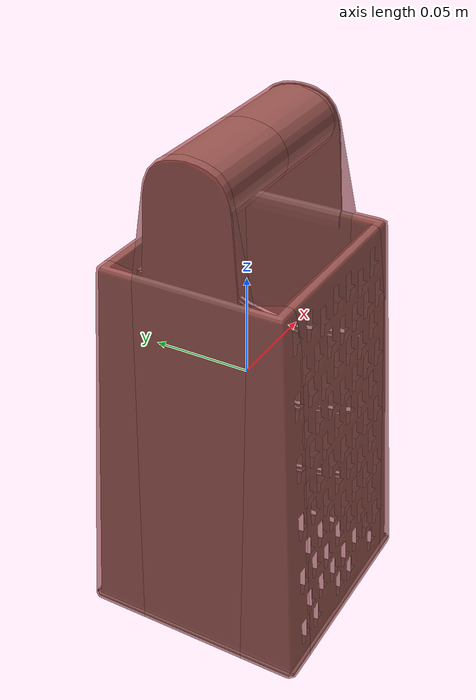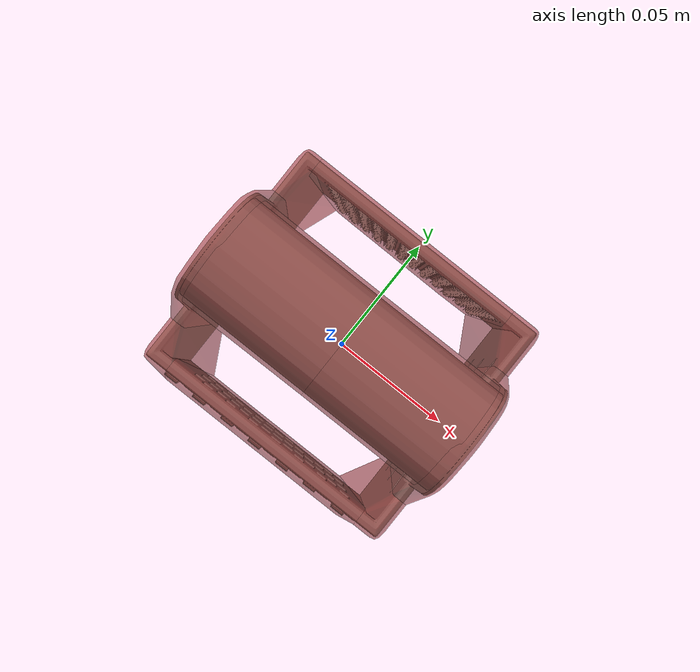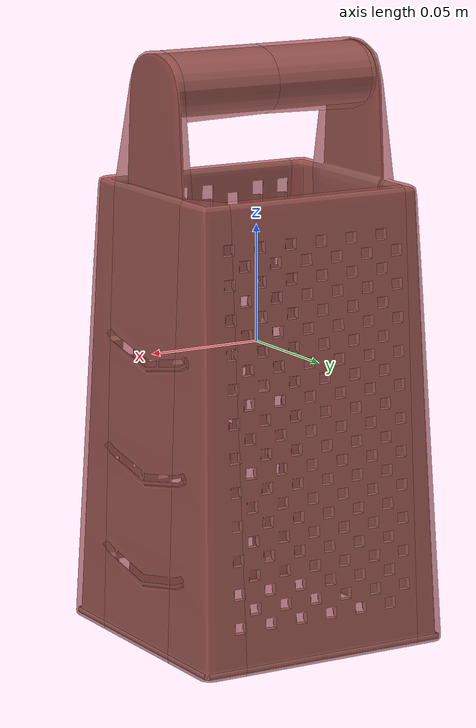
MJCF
<mujoco model="model">
  <option timestep="0.002" gravity="0.0 0.0 -9.81"/>
  <compiler angle="radian"/>
  <asset>
    <mesh file="visual/CheeseGrater003.obj" name="CheeseGrater003_vis"/>
    <texture file="visual/T_BC001.png" name="CheeseGrater003_material" type="2d"/>
    <material name="CheeseGrater003_material" rgba="1 1 1 1.0" texture="CheeseGrater003_material" shininess="1" specular="1"/>
    <mesh file="collision/collision_mesh_collision_0.obj" name="CheeseGrater003_collision_mesh_0"/>
    <mesh file="collision/collision_mesh_collision_1.obj" name="CheeseGrater003_collision_mesh_1"/>
    <mesh file="collision/collision_mesh_collision_2.obj" name="CheeseGrater003_collision_mesh_2"/>
    <mesh file="collision/collision_mesh_collision_3.obj" name="CheeseGrater003_collision_mesh_3"/>
    <mesh file="collision/collision_mesh_collision_4.obj" name="CheeseGrater003_collision_mesh_4"/>
    <mesh file="collision/collision_mesh_collision_5.obj" name="CheeseGrater003_collision_mesh_5"/>
    <mesh file="collision/collision_mesh_collision_6.obj" name="CheeseGrater003_collision_mesh_6"/>
    <mesh file="collision/collision_mesh_collision_7.obj" name="CheeseGrater003_collision_mesh_7"/>
    <mesh file="collision/collision_mesh_collision_8.obj" name="CheeseGrater003_collision_mesh_8"/>
    <mesh file="collision/collision_mesh_collision_9.obj" name="CheeseGrater003_collision_mesh_9"/>
  </asset>
  <default>
    <default class="visual">
      <geom conaffinity="0" contype="0" group="1" type="mesh"/>
    </default>
    <default class="collision">
      <geom group="0" rgba="0.5 0 0 0.5" density="1.0" solref="0.004 1" solimp="0.998 0.998 0.001"/>
    </default>
    <default class="spawn">
      <geom group="0" rgba="1 1 1 0.5" contype="0" conaffinity="0"/>
      <site group="0" rgba="1 1 1 0.5"/>
    </default>
    <default class="region">
      <geom group="1" conaffinity="0" contype="0" rgba="0 1 0 0" mass="0"/>
    </default>
  </default>
  <worldbody>
    <body>
      <body name="object">
        <geom mesh="CheeseGrater003_vis" type="mesh" solimp="0.998 0.998 0.001" solref="0.001 1" friction="0.95 0.3 0.1" class="visual" material="CheeseGrater003_material"/>
        <geom class="region" name="reg_bbox" type="box" pos="0.0 -3.795000000000881e-06 5.367499999998915e-05" size="0.05853249 0.058507985 0.12600535499999999"/>
        <geom mesh="CheeseGrater003_collision_mesh_0" type="mesh" class="collision"/>
        <geom mesh="CheeseGrater003_collision_mesh_1" type="mesh" class="collision"/>
        <geom mesh="CheeseGrater003_collision_mesh_2" type="mesh" class="collision"/>
        <geom mesh="CheeseGrater003_collision_mesh_3" type="mesh" class="collision"/>
        <geom mesh="CheeseGrater003_collision_mesh_4" type="mesh" class="collision"/>
        <geom mesh="CheeseGrater003_collision_mesh_5" type="mesh" class="collision"/>
        <geom mesh="CheeseGrater003_collision_mesh_6" type="mesh" class="collision"/>
        <geom mesh="CheeseGrater003_collision_mesh_7" type="mesh" class="collision"/>
        <geom mesh="CheeseGrater003_collision_mesh_8" type="mesh" class="collision"/>
        <geom mesh="CheeseGrater003_collision_mesh_9" type="mesh" class="collision"/>
      </body>
    </body>
  </worldbody>
  <actuator/>
</mujoco>
